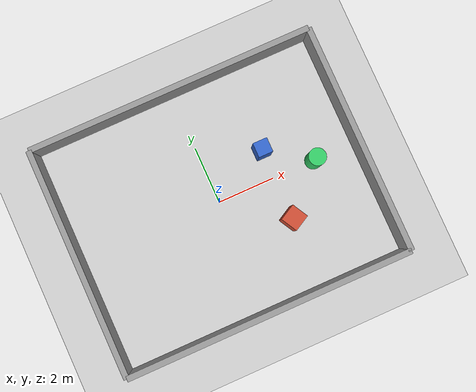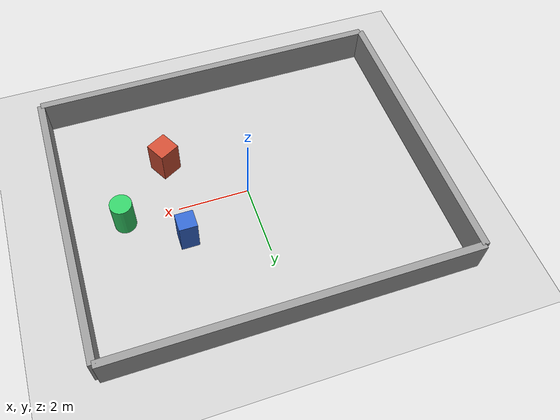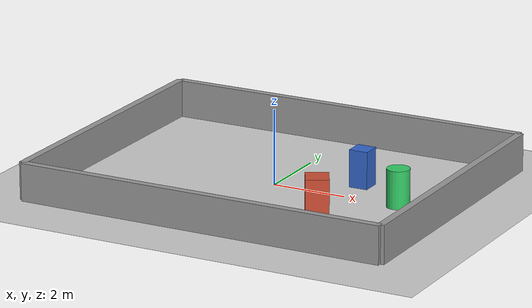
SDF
<?xml version="1.0" ?>
<sdf version="1.8">
  <world name="intel_sys_world">
    <!-- Physics parameters -->
    <physics name="1ms" type="ignored">
      <max_step_size>0.001</max_step_size>
      <real_time_factor>1.0</real_time_factor>
    </physics>

    <!-- Essential System Plugins -->
    <plugin filename="gz-sim-physics-system" name="gz::sim::systems::Physics"/>
    <plugin filename="gz-sim-user-commands-system" name="gz::sim::systems::UserCommands"/>
    <plugin filename="gz-sim-scene-broadcaster-system" name="gz::sim::systems::SceneBroadcaster"/>
    <plugin filename="gz-sim-sensors-system" name="gz::sim::systems::Sensors">
      <render_engine>ogre2</render_engine>
    </plugin>
    <plugin filename="gz-sim-imu-system" name="gz::sim::systems::Imu"/>

    <!-- Sunlight -->
    <light type="directional" name="sun">
      <cast_shadows>true</cast_shadows>
      <pose>0 0 10 0 0 0</pose>
      <diffuse>0.8 0.8 0.8 1</diffuse>
      <specular>0.2 0.2 0.2 1</specular>
      <attenuation>
        <range>1000</range>
        <constant>0.9</constant>
        <linear>0.01</linear>
        <quadratic>0.001</quadratic>
      </attenuation>
      <direction>-0.5 0.1 -0.9</direction>
    </light>

    <!-- Ground Plane -->
    <model name="ground_plane">
      <static>true</static>
      <link name="link">
        <collision name="collision">
          <geometry>
            <plane>
              <normal>0 0 1</normal>
              <size>100 100</size>
            </plane>
          </geometry>
        </collision>
        <visual name="visual">
          <geometry>
            <plane>
              <normal>0 0 1</normal>
              <size>100 100</size>
            </plane>
          </geometry>
          <material>
            <ambient>0.8 0.8 0.8 1</ambient>
            <diffuse>0.8 0.8 0.8 1</diffuse>
            <specular>0.8 0.8 0.8 1</specular>
          </material>
        </visual>
      </link>
    </model>

    <!-- Arena Obstacles (Boxes & Cylinders for LiDAR/Nav2 testing) -->
    <model name="box_obstacle_1">
      <static>true</static>
      <pose>2.0 1.0 0.5 0 0 0</pose>
      <link name="link">
        <collision name="collision">
          <geometry><box><size>0.5 0.5 1.0</size></box></geometry>
        </collision>
        <visual name="visual">
          <geometry><box><size>0.5 0.5 1.0</size></box></geometry>
          <material><diffuse>0.2 0.4 0.8 1</diffuse></material>
        </visual>
      </link>
    </model>

    <model name="box_obstacle_2">
      <static>true</static>
      <pose>2.0 -1.5 0.5 0 0 0.5</pose>
      <link name="link">
        <collision name="collision">
          <geometry><box><size>0.6 0.6 1.0</size></box></geometry>
        </collision>
        <visual name="visual">
          <geometry><box><size>0.6 0.6 1.0</size></box></geometry>
          <material><diffuse>0.8 0.3 0.2 1</diffuse></material>
        </visual>
      </link>
    </model>

    <model name="cylinder_obstacle_1">
      <static>true</static>
      <pose>3.5 0.0 0.5 0 0 0</pose>
      <link name="link">
        <collision name="collision">
          <geometry><cylinder><radius>0.3</radius><length>1.0</length></cylinder></geometry>
        </collision>
        <visual name="visual">
          <geometry><cylinder><radius>0.3</radius><length>1.0</length></cylinder></geometry>
          <material><diffuse>0.2 0.8 0.4 1</diffuse></material>
        </visual>
      </link>
    </model>

    <model name="wall_perimeter">
      <static>true</static>
      <!-- North Wall -->
      <link name="north_wall">
        <pose>0 4 0.5 0 0 0</pose>
        <collision name="col"><geometry><box><size>10 0.2 1.0</size></box></geometry></collision>
        <visual name="vis"><geometry><box><size>10 0.2 1.0</size></box></geometry><material><diffuse>0.6 0.6 0.6 1</diffuse></material></visual>
      </link>
      <!-- South Wall -->
      <link name="south_wall">
        <pose>0 -4 0.5 0 0 0</pose>
        <collision name="col"><geometry><box><size>10 0.2 1.0</size></box></geometry></collision>
        <visual name="vis"><geometry><box><size>10 0.2 1.0</size></box></geometry><material><diffuse>0.6 0.6 0.6 1</diffuse></material></visual>
      </link>
      <!-- East Wall -->
      <link name="east_wall">
        <pose>5 0 0.5 0 0 0</pose>
        <collision name="col"><geometry><box><size>0.2 8 1.0</size></box></geometry></collision>
        <visual name="vis"><geometry><box><size>0.2 8 1.0</size></box></geometry><material><diffuse>0.6 0.6 0.6 1</diffuse></material></visual>
      </link>
      <!-- West Wall -->
      <link name="west_wall">
        <pose>-5 0 0.5 0 0 0</pose>
        <collision name="col"><geometry><box><size>0.2 8 1.0</size></box></geometry></collision>
        <visual name="vis"><geometry><box><size>0.2 8 1.0</size></box></geometry><material><diffuse>0.6 0.6 0.6 1</diffuse></material></visual>
      </link>
    </model>

  </world>
</sdf>
